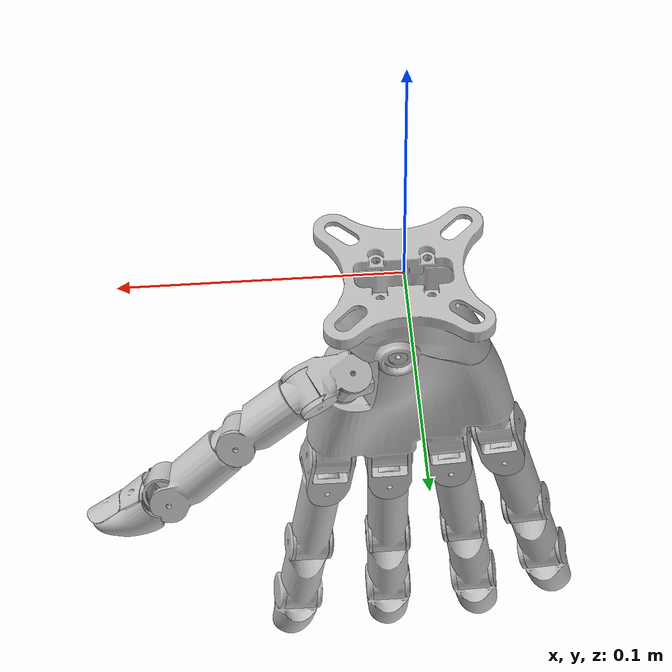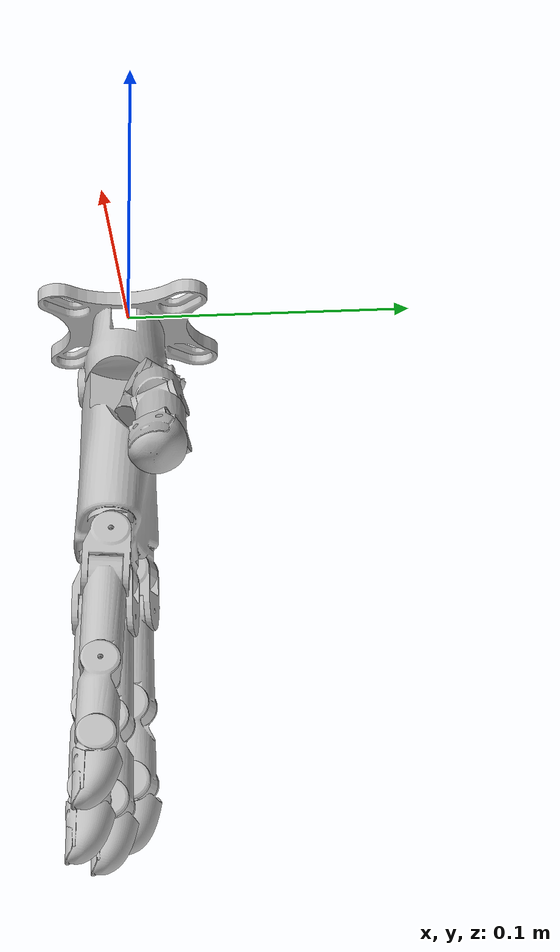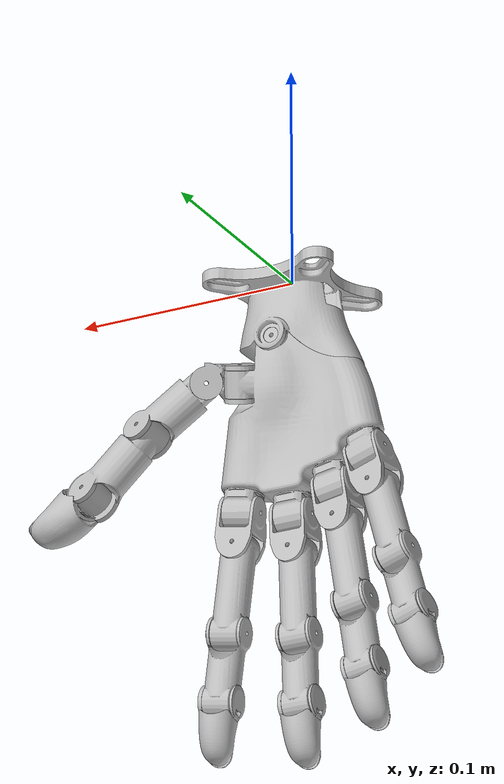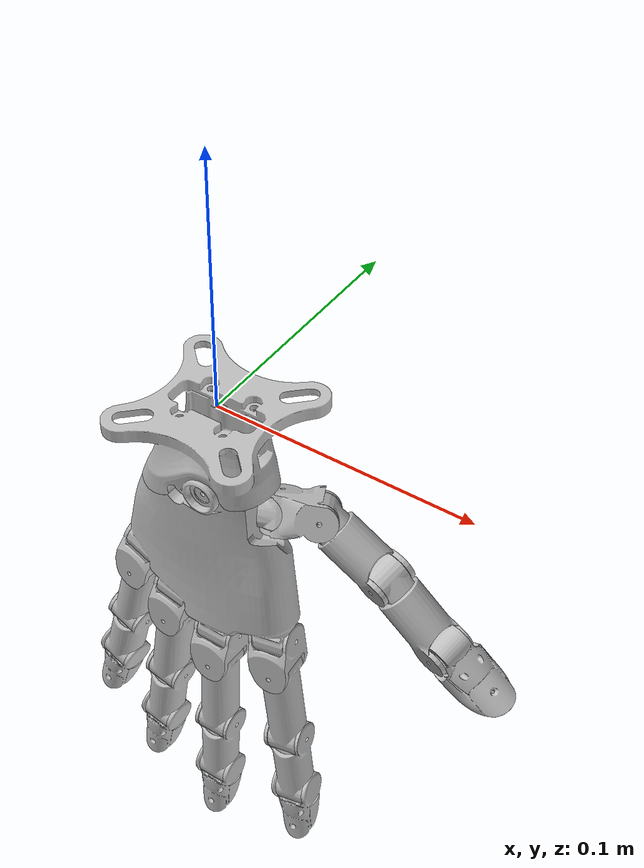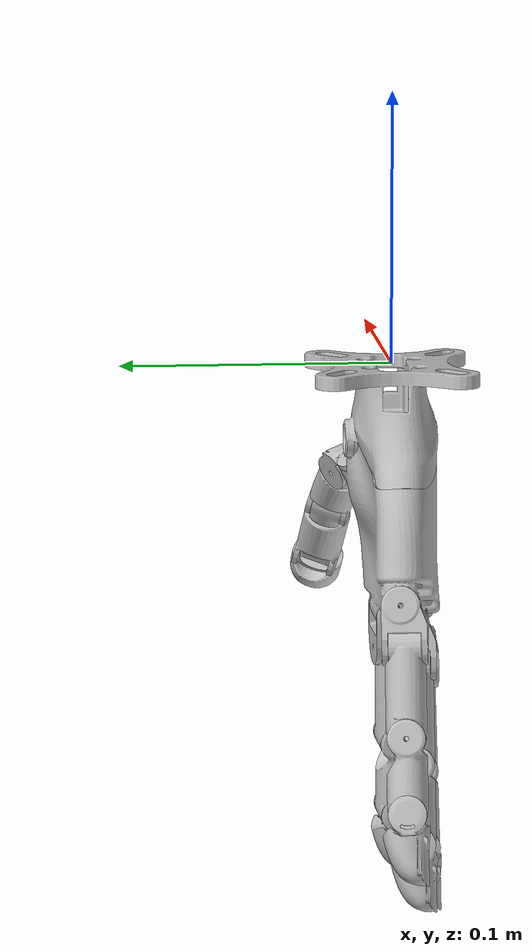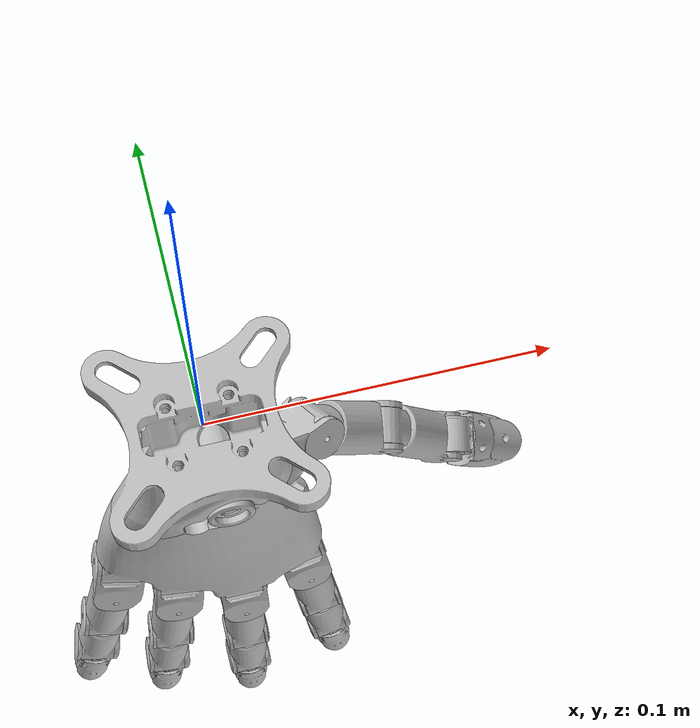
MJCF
<mujoco model="wujihand2-right">
  <compiler angle="radian" meshdir="../meshes/right/" />
  <option jacobian="sparse" integrator="RK4" timestep="0.002" solver="Newton" iterations="50" tolerance="1e-10" />
  <default>
    <joint armature="0.0002" damping="0.0" />
  </default>
  <asset>
    <mesh name="r_mount" content_type="model/stl" file="r_mount.STL" />
    <mesh name="r_wrist" content_type="model/stl" file="r_wrist.STL" />
    <mesh name="r_thumb_proximal" content_type="model/stl" file="r_thumb_proximal.STL" />
    <mesh name="r_thumb_proximal_abd" content_type="model/stl" file="r_thumb_proximal_abd.STL" />
    <mesh name="r_thumb_middle" content_type="model/stl" file="r_thumb_middle.STL" />
    <mesh name="r_thumb_distal" content_type="model/stl" file="r_thumb_distal.STL" />
    <mesh name="r_index_finger_proximal" content_type="model/stl" file="r_index_finger_proximal.STL" />
    <mesh name="r_index_finger_proximal_abd" content_type="model/stl" file="r_index_finger_proximal_abd.STL" />
    <mesh name="r_index_finger_middle" content_type="model/stl" file="r_index_finger_middle.STL" />
    <mesh name="r_index_finger_distal" content_type="model/stl" file="r_index_finger_distal.STL" />
    <mesh name="r_middle_finger_proximal" content_type="model/stl" file="r_middle_finger_proximal.STL" />
    <mesh name="r_middle_finger_proximal_abd" content_type="model/stl" file="r_middle_finger_proximal_abd.STL" />
    <mesh name="r_middle_finger_middle" content_type="model/stl" file="r_middle_finger_middle.STL" />
    <mesh name="r_middle_finger_distal" content_type="model/stl" file="r_middle_finger_distal.STL" />
    <mesh name="r_ring_finger_proximal" content_type="model/stl" file="r_ring_finger_proximal.STL" />
    <mesh name="r_ring_finger_proximal_abd" content_type="model/stl" file="r_ring_finger_proximal_abd.STL" />
    <mesh name="r_ring_finger_middle" content_type="model/stl" file="r_ring_finger_middle.STL" />
    <mesh name="r_ring_finger_distal" content_type="model/stl" file="r_ring_finger_distal.STL" />
    <mesh name="r_pinky_proximal" content_type="model/stl" file="r_pinky_proximal.STL" />
    <mesh name="r_pinky_proximal_abd" content_type="model/stl" file="r_pinky_proximal_abd.STL" />
    <mesh name="r_pinky_middle" content_type="model/stl" file="r_pinky_middle.STL" />
    <mesh name="r_pinky_distal" content_type="model/stl" file="r_pinky_distal.STL" />
  </asset>
  <worldbody>
    <body name="r_mount">
      <inertial pos="-0.00285955798829 -0.00108266456258 -0.0169824080918" mass="0.069" quat="-0.51751125 -0.18292100 0.83364234 0.06133891" diaginertia="2.60409226e-05 2.50870849e-05 1.69216352e-05" />
      <geom type="mesh" contype="0" conaffinity="0" group="1" density="0" rgba="0.75 0.75 0.75 1" mesh="r_mount" />
      <geom type="mesh" rgba="0.8 0.6 1 0.3" mesh="r_mount" group="2" />
      <body name="r_wrist" pos="0.003 0.00025016 -0.0285" quat="1 0 0 8.1995e-06">
        <inertial pos="-0.00354289960216 -0.00346747236064 -0.0356950477108" mass="0.2323" quat="0.10780268 0.69274370 0.71186097 0.04169786" diaginertia="1.55670709e-04 9.95644502e-05 7.71545957e-05" />
        <geom type="mesh" contype="0" conaffinity="0" group="1" density="0" rgba="0.75 0.75 0.75 1" mesh="r_wrist" />
        <geom type="mesh" rgba="0.8 0.6 1 0.3" mesh="r_wrist" group="2" />
        <body name="r_thumb_proximal" pos="0.0172101335 0.00813795777 -0.016457" quat="0.629432288 -0.0606504993 -0.720104441 0.285632815">
          <inertial pos="0.000853657 -0.00195618 -0.00731809" quat="0.926535 0.017864 -0.0783162 -0.367534" mass="0.011" diaginertia="8.38654e-07 7.81045e-07 6.3308e-07" />
          <joint name="r_thumb_cmc_flex" pos="0 0 0" axis="1 0 0" range="-1.187 1.291" actuatorfrcrange="-0.6 0.6" armature="0.0005" />
          <geom type="mesh" contype="0" conaffinity="0" group="1" density="0" rgba="0.75 0.75 0.75 1" mesh="r_thumb_proximal" />
          <geom type="mesh" rgba="0.8 0.6 1 0.3" mesh="r_thumb_proximal" group="2" />
          <body name="r_thumb_proximal_abd" pos="0.00024788 -0.00053658 -0.014754" quat="0.934711 0.0919289 0.342519 -0.0233666">
            <inertial pos="1.27934e-05 6.47331e-06 -0.0130544" quat="0.514054 -0.00124335 -0.00239204 0.857754" mass="0.0336" diaginertia="4.2288e-06 4.08475e-06 1.2356e-06" />
            <joint name="r_thumb_cmc_abd" pos="0 0 0" axis="0 1 0" range="-1.484 0.698" actuatorfrcrange="-0.6 0.6" armature="0.0005" />
            <geom type="mesh" contype="0" conaffinity="0" group="1" density="0" rgba="0.75 0.75 0.75 1" mesh="r_thumb_proximal_abd" />
            <geom type="mesh" rgba="0.8 0.6 1 0.3" mesh="r_thumb_proximal_abd" group="2" />
            <body name="r_thumb_middle" pos="0 0 -0.0325" quat="0.959136 -0.0122059 0.0418766 0.279562">
              <inertial pos="-4.92924e-05 4.31169e-08 -0.0143056" quat="0.70627 -3.2641e-05 -3.35882e-05 0.707942" mass="0.0358" diaginertia="4.92859e-06 4.8196e-06 1.32688e-06" />
              <joint name="r_thumb_mcp" pos="0 0 0" axis="1 0 0" range="-1.047 1.57" actuatorfrcrange="-0.3 0.3" />
              <geom type="mesh" contype="0" conaffinity="0" group="1" density="0" rgba="0.75 0.75 0.75 1" mesh="r_thumb_middle" />
              <geom type="mesh" rgba="0.8 0.6 1 0.3" mesh="r_thumb_middle" group="2" />
              <body name="r_thumb_distal" pos="-5e-05 0 -0.035">
                <inertial pos="-1.969e-05 0.000584113 -0.0149297" quat="0.686409 -0.0415291 0.0330029 0.725279" mass="0.0159" diaginertia="1.38099e-06 1.3339e-06 6.79986e-07" />
                <joint name="r_thumb_ip" pos="0 0 0" axis="1 0 0" range="-1.047 1.57" actuatorfrcrange="-0.3 0.3" />
                <geom type="mesh" contype="0" conaffinity="0" group="1" density="0" rgba="0.75 0.75 0.75 1" mesh="r_thumb_distal" />
                <geom type="mesh" rgba="0.8 0.6 1 0.3" mesh="r_thumb_distal" group="2" />
                <site name="r_thumb_tip" pos="0 0 -0.02978" group="3" size="0.002" rgba="1 0 0 1" />
              </body>
            </body>
          </body>
        </body>
        <body name="r_index_finger_proximal" pos="0.0226609455 -0.00332513162 -0.069975" quat="0.996267344 -0.0163877679 -0.0693675618 0.0486925284">
          <inertial pos="1.83161e-09 -0.00178137 -0.00760139" quat="0.999275 -0.0380628 0 0" mass="0.0116" diaginertia="9.19684e-07 9.08608e-07 7.88412e-07" />
          <joint name="r_index_finger_mcp_flex" pos="0 0 0" axis="1 0 0" range="-1.047 1.57" actuatorfrcrange="-2 2" armature="0.0005" />
          <geom type="mesh" contype="0" conaffinity="0" group="1" density="0" rgba="0.75 0.75 0.75 1" mesh="r_index_finger_proximal" />
          <geom type="mesh" rgba="0.8 0.6 1 0.3" mesh="r_index_finger_proximal" group="2" />
          <body name="r_index_finger_proximal_abd" pos="0 -0.001201 -0.0145">
            <inertial pos="8.04675e-08 7.30404e-07 -0.0187994" quat="0.983237 -1.60588e-05 3.84243e-06 0.18233" mass="0.0339" diaginertia="7.01589e-06 7.01555e-06 9.1448e-07" />
            <joint name="r_index_finger_mcp_abd" pos="0 0 0" axis="0 1 0" range="-0.698 0.698" actuatorfrcrange="-0.2 0.2" />
            <geom type="mesh" contype="0" conaffinity="0" group="1" density="0" rgba="0.75 0.75 0.75 1" mesh="r_index_finger_proximal_abd" />
            <geom type="mesh" rgba="0.8 0.6 1 0.3" mesh="r_index_finger_proximal_abd" group="2" />
            <body name="r_index_finger_middle" pos="0 0 -0.0376">
              <inertial pos="-5.07335e-08 -0.000247887 -0.0190348" quat="0.707235 0.0108069 -0.0107958 0.706814" mass="0.0212" diaginertia="2.47797e-06 2.40525e-06 6.52478e-07" />
              <joint name="r_index_finger_pip" pos="0 0 0" axis="1 0 0" range="-1.047 2.094" actuatorfrcrange="-0.3 0.3" />
              <geom type="mesh" contype="0" conaffinity="0" group="1" density="0" rgba="0.75 0.75 0.75 1" mesh="r_index_finger_middle" />
              <geom type="mesh" rgba="0.8 0.6 1 0.3" mesh="r_index_finger_middle" group="2" />
              <body name="r_index_finger_distal" pos="0 0 -0.0295">
                <inertial pos="0.000273616 -3.02075e-05 -0.0121849" quat="0.729924 -0.00300152 0.0683924 0.680091" mass="0.0078" diaginertia="5.74442e-07 5.40524e-07 2.7383e-07" />
                <joint name="r_index_finger_dip" pos="0 0 0" axis="1 0 0" range="-1.047 1.57" actuatorfrcrange="-0.3 0.3" />
                <geom type="mesh" contype="0" conaffinity="0" group="1" density="0" rgba="0.75 0.75 0.75 1" mesh="r_index_finger_distal" />
                <geom type="mesh" rgba="0.8 0.6 1 0.3" mesh="r_index_finger_distal" group="2" />
                <site name="r_index_finger_tip" pos="0 0 -0.02475" group="3" size="0.002" rgba="1 0 0 1" />
              </body>
            </body>
          </body>
        </body>
        <body name="r_middle_finger_proximal" pos="0.00095206384 -0.00830297561 -0.07392" quat="0.999841012 -0.016951955 0.00552373908 -0.0002640562">
          <inertial pos="1.83161e-09 -0.00178137 -0.00760139" quat="0.999275 -0.0380628 0 0" mass="0.0116" diaginertia="9.19684e-07 9.08608e-07 7.88412e-07" />
          <joint name="r_middle_finger_mcp_flex" pos="0 0 0" axis="1 0 0" range="-1.047 1.57" actuatorfrcrange="-2 2" armature="0.0005" />
          <geom type="mesh" contype="0" conaffinity="0" group="1" density="0" rgba="0.75 0.75 0.75 1" mesh="r_middle_finger_proximal" />
          <geom type="mesh" rgba="0.8 0.6 1 0.3" mesh="r_middle_finger_proximal" group="2" />
          <body name="r_middle_finger_proximal_abd" pos="0 -0.001201 -0.0145">
            <inertial pos="8.04675e-08 7.30404e-07 -0.0187994" quat="0.983237 -1.60588e-05 3.84243e-06 0.18233" mass="0.0339" diaginertia="7.01589e-06 7.01555e-06 9.1448e-07" />
            <joint name="r_middle_finger_mcp_abd" pos="0 0 0" axis="0 1 0" range="-0.698 0.698" actuatorfrcrange="-0.2 0.2" />
            <geom type="mesh" contype="0" conaffinity="0" group="1" density="0" rgba="0.75 0.75 0.75 1" mesh="r_middle_finger_proximal_abd" />
            <geom type="mesh" rgba="0.8 0.6 1 0.3" mesh="r_middle_finger_proximal_abd" group="2" />
            <body name="r_middle_finger_middle" pos="0 0 -0.0376">
              <inertial pos="-5.07335e-08 -0.000247887 -0.0190348" quat="0.707235 0.0108069 -0.0107958 0.706814" mass="0.0212" diaginertia="2.47797e-06 2.40525e-06 6.52478e-07" />
              <joint name="r_middle_finger_pip" pos="0 0 0" axis="1 0 0" range="-1.047 2.094" actuatorfrcrange="-0.3 0.3" />
              <geom type="mesh" contype="0" conaffinity="0" group="1" density="0" rgba="0.75 0.75 0.75 1" mesh="r_middle_finger_middle" />
              <geom type="mesh" rgba="0.8 0.6 1 0.3" mesh="r_middle_finger_middle" group="2" />
              <body name="r_middle_finger_distal" pos="0 0 -0.0295">
                <inertial pos="0.000273616 -3.02075e-05 -0.0121849" quat="0.729924 -0.00300152 0.0683924 0.680091" mass="0.0078" diaginertia="5.74442e-07 5.40524e-07 2.7383e-07" />
                <joint name="r_middle_finger_dip" pos="0 0 0" axis="1 0 0" range="-1.047 1.57" actuatorfrcrange="-0.3 0.3" />
                <geom type="mesh" contype="0" conaffinity="0" group="1" density="0" rgba="0.75 0.75 0.75 1" mesh="r_middle_finger_distal" />
                <geom type="mesh" rgba="0.8 0.6 1 0.3" mesh="r_middle_finger_distal" group="2" />
                <site name="r_middle_finger_tip" pos="0 0 -0.02475" group="3" size="0.002" rgba="1 0 0 1" />
              </body>
            </body>
          </body>
        </body>
        <body name="r_ring_finger_proximal" pos="-0.0197440917 -0.00559293622 -0.0654" quat="0.996897306 -0.00588523539 0.0709957184 -0.03347736">
          <inertial pos="1.83161e-09 -0.00178137 -0.00760139" quat="0.999275 -0.0380628 0 0" mass="0.0116" diaginertia="9.19684e-07 9.08608e-07 7.88412e-07" />
          <joint name="r_ring_finger_mcp_flex" pos="0 0 0" axis="1 0 0" range="-1.047 1.57" actuatorfrcrange="-2 2" armature="0.0005" />
          <geom type="mesh" contype="0" conaffinity="0" group="1" density="0" rgba="0.75 0.75 0.75 1" mesh="r_ring_finger_proximal" />
          <geom type="mesh" rgba="0.8 0.6 1 0.3" mesh="r_ring_finger_proximal" group="2" />
          <body name="r_ring_finger_proximal_abd" pos="0 -0.001201 -0.0145">
            <inertial pos="8.04675e-08 7.30404e-07 -0.0187994" quat="0.983237 -1.60588e-05 3.84243e-06 0.18233" mass="0.0339" diaginertia="7.01589e-06 7.01555e-06 9.1448e-07" />
            <joint name="r_ring_finger_mcp_abd" pos="0 0 0" axis="0 1 0" range="-0.698 0.698" actuatorfrcrange="-0.2 0.2" />
            <geom type="mesh" contype="0" conaffinity="0" group="1" density="0" rgba="0.75 0.75 0.75 1" mesh="r_ring_finger_proximal_abd" />
            <geom type="mesh" rgba="0.8 0.6 1 0.3" mesh="r_ring_finger_proximal_abd" group="2" />
            <body name="r_ring_finger_middle" pos="0 0 -0.0376">
              <inertial pos="-5.07335e-08 -0.000247887 -0.0190348" quat="0.707235 0.0108069 -0.0107958 0.706814" mass="0.0212" diaginertia="2.47797e-06 2.40525e-06 6.52478e-07" />
              <joint name="r_ring_finger_pip" pos="0 0 0" axis="1 0 0" range="-1.047 2.094" actuatorfrcrange="-0.3 0.3" />
              <geom type="mesh" contype="0" conaffinity="0" group="1" density="0" rgba="0.75 0.75 0.75 1" mesh="r_ring_finger_middle" />
              <geom type="mesh" rgba="0.8 0.6 1 0.3" mesh="r_ring_finger_middle" group="2" />
              <body name="r_ring_finger_distal" pos="0 0 -0.0295">
                <inertial pos="0.000273616 -3.02075e-05 -0.0121849" quat="0.729924 -0.00300152 0.0683924 0.680091" mass="0.0078" diaginertia="5.74442e-07 5.40524e-07 2.7383e-07" />
                <joint name="r_ring_finger_dip" pos="0 0 0" axis="1 0 0" range="-1.047 1.57" actuatorfrcrange="-0.3 0.3" />
                <geom type="mesh" contype="0" conaffinity="0" group="1" density="0" rgba="0.75 0.75 0.75 1" mesh="r_ring_finger_distal" />
                <geom type="mesh" rgba="0.8 0.6 1 0.3" mesh="r_ring_finger_distal" group="2" />
                <site name="r_ring_finger_tip" pos="0 0 -0.02475" group="3" size="0.002" rgba="1 0 0 1" />
              </body>
            </body>
          </body>
        </body>
        <body name="r_pinky_proximal" pos="-0.037351012 -0.000733757481 -0.055296" quat="0.989990075 -0.00638538405 0.124818003 -0.0655693917">
          <inertial pos="-2.12648e-07 -0.00178136 -0.00760145" quat="0.999275 -0.0380615 2.43184e-05 0.000106967" mass="0.0116" diaginertia="9.19664e-07 9.08603e-07 7.88413e-07" />
          <joint name="r_pinky_mcp_flex" pos="0 0 0" axis="1 0 0" range="-1.047 1.57" actuatorfrcrange="-2 2" armature="0.0005" />
          <geom type="mesh" contype="0" conaffinity="0" group="1" density="0" rgba="0.75 0.75 0.75 1" mesh="r_pinky_proximal" />
          <geom type="mesh" rgba="0.8 0.6 1 0.3" mesh="r_pinky_proximal" group="2" />
          <body name="r_pinky_proximal_abd" pos="0 -0.001201 -0.0145" quat="1 0 0 1.81365e-05">
            <inertial pos="1.55647e-06 5.4532e-07 -0.016785" quat="0.762177 -7.77124e-06 3.02081e-05 0.647368" mass="0.0304" diaginertia="5.38014e-06 5.37944e-06 8.1771e-07" />
            <joint name="r_pinky_mcp_abd" pos="0 0 0" axis="0 1 0" range="-0.698 0.698" actuatorfrcrange="-0.2 0.2" />
            <geom type="mesh" contype="0" conaffinity="0" group="1" density="0" rgba="0.75 0.75 0.75 1" mesh="r_pinky_proximal_abd" />
            <geom type="mesh" rgba="0.8 0.6 1 0.3" mesh="r_pinky_proximal_abd" group="2" />
            <body name="r_pinky_middle" pos="0.0001 0 -0.0336" quat="1 0 0 -1.81365e-05">
              <inertial pos="-3.23236e-07 -0.000264491 -0.0178807" quat="0.707241 0.0112918 -0.0112863 0.706792" mass="0.0188" diaginertia="2.05957e-06 1.98647e-06 5.84911e-07" />
              <joint name="r_pinky_pip" pos="0 0 0" axis="1 0 0" range="-1.047 2.094" actuatorfrcrange="-0.3 0.3" />
              <geom type="mesh" contype="0" conaffinity="0" group="1" density="0" rgba="0.75 0.75 0.75 1" mesh="r_pinky_middle" />
              <geom type="mesh" rgba="0.8 0.6 1 0.3" mesh="r_pinky_middle" group="2" />
              <body name="r_pinky_distal" pos="0 0 -0.0275">
                <inertial pos="0.000273616 -3.02075e-05 -0.0121849" quat="0.729924 -0.00300152 0.0683924 0.680091" mass="0.0078" diaginertia="5.74442e-07 5.40524e-07 2.7383e-07" />
                <joint name="r_pinky_dip" pos="0 0 0" axis="1 0 0" range="-1.047 1.57" actuatorfrcrange="-0.3 0.3" />
                <geom type="mesh" contype="0" conaffinity="0" group="1" density="0" rgba="0.75 0.75 0.75 1" mesh="r_pinky_distal" />
                <geom type="mesh" rgba="0.8 0.6 1 0.3" mesh="r_pinky_distal" group="2" />
                <site name="r_pinky_tip" pos="0 0 -0.02475" group="3" size="0.002" rgba="1 0 0 1" />
              </body>
            </body>
          </body>
        </body>
      </body>
    </body>
  </worldbody>
  <actuator>
    <position name="r_THJ0" joint="r_thumb_cmc_flex" kp="0.40844710645048043" kv="0.020882010257063675" ctrlrange="-1.187 1.291" forcerange="-0.6 0.6" />
    <position name="r_THJ1" joint="r_thumb_cmc_abd" kp="0.6858601063643346" kv="0.030610939996373314" ctrlrange="-1.484 0.698" forcerange="-0.6 0.6" />
    <position name="r_THJ2" joint="r_thumb_mcp" kp="0.2391112196099482" kv="0.010181475050560962" ctrlrange="-1.047 1.57" forcerange="-0.3 0.3" />
    <position name="r_THJ3" joint="r_thumb_ip" kp="0.20736128319711747" kv="0.00909698844675045" ctrlrange="-1.047 1.57" forcerange="-0.3 0.3" />
    <position name="r_FFJ0" joint="r_index_finger_mcp_flex" kp="0.37352218155860073" kv="0.01882274330029718" ctrlrange="-1.047 1.57" forcerange="-2 2" />
    <position name="r_FFJ1" joint="r_index_finger_mcp_abd" kp="0.45592448909027794" kv="0.019798167597016643" ctrlrange="-0.698 0.698" forcerange="-0.2 0.2" />
    <position name="r_FFJ2" joint="r_index_finger_pip" kp="0.24368366649522863" kv="0.010477031953162727" ctrlrange="-1.047 2.094" forcerange="-0.3 0.3" />
    <position name="r_FFJ3" joint="r_index_finger_dip" kp="0.18026971340925335" kv="0.008240212147903584" ctrlrange="-1.047 1.57" forcerange="-0.3 0.3" />
    <position name="r_MFJ0" joint="r_middle_finger_mcp_flex" kp="0.3687093483646485" kv="0.01848622487024593" ctrlrange="-1.047 1.57" forcerange="-2 2" />
    <position name="r_MFJ1" joint="r_middle_finger_mcp_abd" kp="0.4164253443634641" kv="0.018032947229953678" ctrlrange="-0.698 0.698" forcerange="-0.2 0.2" />
    <position name="r_MFJ2" joint="r_middle_finger_pip" kp="0.22218607502059182" kv="0.009592200014076666" ctrlrange="-1.047 2.094" forcerange="-0.3 0.3" />
    <position name="r_MFJ3" joint="r_middle_finger_dip" kp="0.19427606072023446" kv="0.009152994605972402" ctrlrange="-1.047 1.57" forcerange="-0.3 0.3" />
    <position name="r_RFJ0" joint="r_ring_finger_mcp_flex" kp="0.35718151495111794" kv="0.018376606800780005" ctrlrange="-1.047 1.57" forcerange="-2 2" />
    <position name="r_RFJ1" joint="r_ring_finger_mcp_abd" kp="0.42977315313086895" kv="0.01867700966212433" ctrlrange="-0.698 0.698" forcerange="-0.2 0.2" />
    <position name="r_RFJ2" joint="r_ring_finger_pip" kp="0.24930151196247122" kv="0.01059512121009555" ctrlrange="-1.047 2.094" forcerange="-0.3 0.3" />
    <position name="r_RFJ3" joint="r_ring_finger_dip" kp="0.2285032688178066" kv="0.009917602877441107" ctrlrange="-1.047 1.57" forcerange="-0.3 0.3" />
    <position name="r_LFJ0" joint="r_pinky_mcp_flex" kp="0.3655325975433942" kv="0.018616960278988272" ctrlrange="-1.047 1.57" forcerange="-2 2" />
    <position name="r_LFJ1" joint="r_pinky_mcp_abd" kp="0.41393113081120425" kv="0.018732177029667153" ctrlrange="-0.698 0.698" forcerange="-0.2 0.2" />
    <position name="r_LFJ2" joint="r_pinky_pip" kp="0.22729367621965954" kv="0.00951005441616486" ctrlrange="-1.047 2.094" forcerange="-0.3 0.3" />
    <position name="r_LFJ3" joint="r_pinky_dip" kp="0.1964723550341816" kv="0.009017295241756363" ctrlrange="-1.047 1.57" forcerange="-0.3 0.3" />
  </actuator>
  <contact>
    <exclude body1="r_thumb_proximal" body2="r_wrist" />
    <exclude body1="r_thumb_proximal_abd" body2="r_wrist" />
    <exclude body1="r_index_finger_proximal" body2="r_wrist" />
    <exclude body1="r_index_finger_proximal_abd" body2="r_wrist" />
    <exclude body1="r_middle_finger_proximal" body2="r_wrist" />
    <exclude body1="r_middle_finger_proximal_abd" body2="r_wrist" />
    <exclude body1="r_ring_finger_proximal" body2="r_wrist" />
    <exclude body1="r_ring_finger_proximal_abd" body2="r_wrist" />
    <exclude body1="r_pinky_proximal" body2="r_wrist" />
    <exclude body1="r_pinky_proximal_abd" body2="r_wrist" />
  </contact>
</mujoco>
